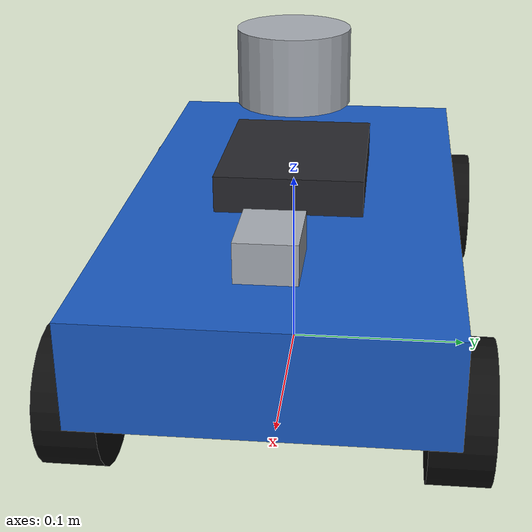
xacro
<!-- sampled from https://github.com/CagriCatik/JetRacer-ROS2 -->

<?xml version="1.0"?>
<robot name="jetracer" xmlns:xacro="http://www.ros.org/wiki/xacro">
  <xacro:property name="half_pi" value="${xacro.pi / 2.0}"/>

  <xacro:property name="wheelbase" value="0.255"/>
  <xacro:property name="track_width" value="0.180"/>
  <xacro:property name="wheel_radius" value="0.035"/>
  <xacro:property name="wheel_width" value="0.030"/>

  <xacro:property name="chassis_length" value="0.330"/>
  <xacro:property name="chassis_width" value="0.180"/>
  <xacro:property name="chassis_height" value="0.055"/>
  <xacro:property name="chassis_mass" value="2.2"/>

  <xacro:property name="base_link_z" value="0.065"/>
  <xacro:property name="chassis_bottom_z" value="${base_link_z - chassis_height / 2.0}"/>
  <xacro:property name="front_axle_x" value="${wheelbase / 2.0}"/>
  <xacro:property name="rear_axle_x" value="${-wheelbase / 2.0}"/>
  <xacro:property name="left_wheel_y" value="${track_width / 2.0}"/>
  <xacro:property name="right_wheel_y" value="${-track_width / 2.0}"/>
  <xacro:property name="wheel_z" value="${wheel_radius - base_link_z}"/>

  <xacro:property name="camera_x" value="0.115"/>
  <xacro:property name="camera_y" value="0.0"/>
  <xacro:property name="camera_z" value="0.045"/>
  <xacro:property name="imu_x" value="0.0"/>
  <xacro:property name="imu_y" value="0.0"/>
  <xacro:property name="imu_z" value="0.020"/>
  <xacro:property name="laser_x" value="0.000"/>
  <xacro:property name="laser_y" value="0.000"/>
  <xacro:property name="laser_z" value="0.100"/>

  <xacro:macro name="box_inertia" params="mass x y z">
    <inertial>
      <origin xyz="0 0 0" rpy="0 0 0"/>
      <mass value="${mass}"/>
      <inertia
        ixx="${mass * (y * y + z * z) / 12.0}"
        ixy="0.0"
        ixz="0.0"
        iyy="${mass * (x * x + z * z) / 12.0}"
        iyz="0.0"
        izz="${mass * (x * x + y * y) / 12.0}"/>
    </inertial>
  </xacro:macro>

  <xacro:macro name="cylinder_inertia" params="mass radius length">
    <inertial>
      <origin xyz="0 0 0" rpy="0 0 0"/>
      <mass value="${mass}"/>
      <inertia
        ixx="${mass * (3.0 * radius * radius + length * length) / 12.0}"
        ixy="0.0"
        ixz="0.0"
        iyy="${mass * (3.0 * radius * radius + length * length) / 12.0}"
        iyz="0.0"
        izz="${0.5 * mass * radius * radius}"/>
    </inertial>
  </xacro:macro>

  <xacro:macro name="wheel_link" params="name color">
    <link name="${name}">
      <visual>
        <origin xyz="0 0 0" rpy="${pi / 2.0} 0 0"/>
        <geometry>
          <cylinder radius="${wheel_radius}" length="${wheel_width}"/>
        </geometry>
        <material name="${color}"/>
      </visual>
      <collision>
        <origin xyz="0 0 0" rpy="${pi / 2.0} 0 0"/>
        <geometry>
          <cylinder radius="${wheel_radius}" length="${wheel_width}"/>
        </geometry>
      </collision>
      <xacro:cylinder_inertia mass="0.15" radius="${wheel_radius}" length="${wheel_width}"/>
    </link>
  </xacro:macro>

  <material name="jetson_black">
    <color rgba="0.15 0.15 0.17 1.0"/>
  </material>
  <material name="jetracer_blue">
    <color rgba="0.10 0.35 0.75 1.0"/>
  </material>
  <material name="wheel_dark">
    <color rgba="0.05 0.05 0.05 1.0"/>
  </material>
  <material name="sensor_silver">
    <color rgba="0.65 0.67 0.70 1.0"/>
  </material>

  <link name="base_footprint"/>

  <link name="base_link">
    <visual>
      <origin xyz="0 0 0" rpy="0 0 0"/>
      <geometry>
        <box size="${chassis_length} ${chassis_width} ${chassis_height}"/>
      </geometry>
      <material name="jetracer_blue"/>
    </visual>
    <collision>
      <origin xyz="0 0 0" rpy="0 0 0"/>
      <geometry>
        <box size="${chassis_length} ${chassis_width} ${chassis_height}"/>
      </geometry>
    </collision>
    <xacro:box_inertia mass="${chassis_mass}" x="${chassis_length}" y="${chassis_width}" z="${chassis_height}"/>
  </link>

  <joint name="base_footprint_to_base_link" type="fixed">
    <parent link="base_footprint"/>
    <child link="base_link"/>
    <origin xyz="0 0 ${base_link_z}" rpy="0 0 0"/>
  </joint>

  <link name="front_left_steering_link">
    <visual>
      <origin xyz="0 0 0" rpy="0 0 0"/>
      <geometry>
        <box size="0.025 0.020 0.020"/>
      </geometry>
      <material name="jetson_black"/>
    </visual>
    <collision>
      <origin xyz="0 0 0" rpy="0 0 0"/>
      <geometry>
        <box size="0.025 0.020 0.020"/>
      </geometry>
    </collision>
    <xacro:box_inertia mass="0.02" x="0.025" y="0.020" z="0.020"/>
  </link>

  <link name="front_right_steering_link">
    <visual>
      <origin xyz="0 0 0" rpy="0 0 0"/>
      <geometry>
        <box size="0.025 0.020 0.020"/>
      </geometry>
      <material name="jetson_black"/>
    </visual>
    <collision>
      <origin xyz="0 0 0" rpy="0 0 0"/>
      <geometry>
        <box size="0.025 0.020 0.020"/>
      </geometry>
    </collision>
    <xacro:box_inertia mass="0.02" x="0.025" y="0.020" z="0.020"/>
  </link>

  <xacro:wheel_link name="front_left_wheel_link" color="wheel_dark"/>
  <xacro:wheel_link name="front_right_wheel_link" color="wheel_dark"/>
  <xacro:wheel_link name="rear_left_wheel_link" color="wheel_dark"/>
  <xacro:wheel_link name="rear_right_wheel_link" color="wheel_dark"/>

  <joint name="front_left_steering_joint" type="revolute">
    <parent link="base_link"/>
    <child link="front_left_steering_link"/>
    <origin xyz="${front_axle_x} ${left_wheel_y} ${wheel_z}" rpy="0 0 0"/>
    <axis xyz="0 0 1"/>
    <limit lower="-0.60" upper="0.60" effort="2.0" velocity="2.0"/>
  </joint>

  <joint name="front_right_steering_joint" type="revolute">
    <parent link="base_link"/>
    <child link="front_right_steering_link"/>
    <origin xyz="${front_axle_x} ${right_wheel_y} ${wheel_z}" rpy="0 0 0"/>
    <axis xyz="0 0 1"/>
    <limit lower="-0.60" upper="0.60" effort="2.0" velocity="2.0"/>
  </joint>

  <joint name="front_left_wheel_joint" type="continuous">
    <parent link="front_left_steering_link"/>
    <child link="front_left_wheel_link"/>
    <origin xyz="0 0 0" rpy="0 0 0"/>
    <axis xyz="0 1 0"/>
  </joint>

  <joint name="front_right_wheel_joint" type="continuous">
    <parent link="front_right_steering_link"/>
    <child link="front_right_wheel_link"/>
    <origin xyz="0 0 0" rpy="0 0 0"/>
    <axis xyz="0 1 0"/>
  </joint>

  <joint name="rear_left_wheel_joint" type="continuous">
    <parent link="base_link"/>
    <child link="rear_left_wheel_link"/>
    <origin xyz="${rear_axle_x} ${left_wheel_y} ${wheel_z}" rpy="0 0 0"/>
    <axis xyz="0 1 0"/>
  </joint>

  <joint name="rear_right_wheel_joint" type="continuous">
    <parent link="base_link"/>
    <child link="rear_right_wheel_link"/>
    <origin xyz="${rear_axle_x} ${right_wheel_y} ${wheel_z}" rpy="0 0 0"/>
    <axis xyz="0 1 0"/>
  </joint>

  <link name="camera_link">
    <visual>
      <origin xyz="0 0 0" rpy="0 0 0"/>
      <geometry>
        <box size="0.040 0.030 0.020"/>
      </geometry>
      <material name="sensor_silver"/>
    </visual>
    <collision>
      <origin xyz="0 0 0" rpy="0 0 0"/>
      <geometry>
        <box size="0.040 0.030 0.020"/>
      </geometry>
    </collision>
    <xacro:box_inertia mass="0.03" x="0.040" y="0.030" z="0.020"/>
  </link>

  <joint name="camera_joint" type="fixed">
    <parent link="base_link"/>
    <child link="camera_link"/>
    <origin xyz="${camera_x} ${camera_y} ${camera_z}" rpy="0 0 0"/>
  </joint>

  <!-- Camera optical frame: standard ROS convention for CSI cameras -->
  <link name="camera_link_optical">
    <xacro:box_inertia mass="0.0001" x="0.001" y="0.001" z="0.001"/>
  </link>

  <joint name="camera_optical_joint" type="fixed">
    <parent link="camera_link"/>
    <child link="camera_link_optical"/>
    <!-- Rotate to align with optical axis (Z forward, X right, Y down) -->
    <origin xyz="0 0 0" rpy="${-pi/2} 0 ${-pi/2}"/>
  </joint>

  <link name="imu_link">
    <visual>
      <origin xyz="0 0 0" rpy="0 0 0"/>
      <geometry>
        <box size="0.025 0.025 0.008"/>
      </geometry>
      <material name="sensor_silver"/>
    </visual>
    <collision>
      <origin xyz="0 0 0" rpy="0 0 0"/>
      <geometry>
        <box size="0.025 0.025 0.008"/>
      </geometry>
    </collision>
    <xacro:box_inertia mass="0.01" x="0.025" y="0.025" z="0.008"/>
  </link>

  <joint name="imu_joint" type="fixed">
    <parent link="base_link"/>
    <child link="imu_link"/>
    <origin xyz="${imu_x} ${imu_y} ${imu_z}" rpy="0 0 0"/>
  </joint>

  <link name="laser_link">
    <visual>
      <origin xyz="0 0 0" rpy="0 0 0"/>
      <geometry>
        <cylinder radius="0.030" length="0.040"/>
      </geometry>
      <material name="sensor_silver"/>
    </visual>
    <collision>
      <origin xyz="0 0 0" rpy="0 0 0"/>
      <geometry>
        <cylinder radius="0.030" length="0.040"/>
      </geometry>
    </collision>
    <xacro:cylinder_inertia mass="0.08" radius="0.030" length="0.040"/>
  </link>

  <joint name="laser_joint" type="fixed">
    <parent link="base_link"/>
    <child link="laser_link"/>
    <origin xyz="${laser_x} ${laser_y} ${laser_z}" rpy="${pi} 0 0"/>
  </joint>

  <link name="jetson_link">
    <visual>
      <origin xyz="0 0 0" rpy="0 0 0"/>
      <geometry>
        <box size="0.100 0.080 0.020"/>
      </geometry>
      <material name="jetson_black"/>
    </visual>
    <collision>
      <origin xyz="0 0 0" rpy="0 0 0"/>
      <geometry>
        <box size="0.100 0.080 0.020"/>
      </geometry>
    </collision>
    <xacro:box_inertia mass="0.14" x="0.100" y="0.080" z="0.020"/>
  </link>

  <joint name="jetson_joint" type="fixed">
    <parent link="base_link"/>
    <child link="jetson_link"/>
    <origin xyz="-0.015 0 ${chassis_height / 2.0 + 0.010}" rpy="0 0 0"/>
  </joint>
</robot>
